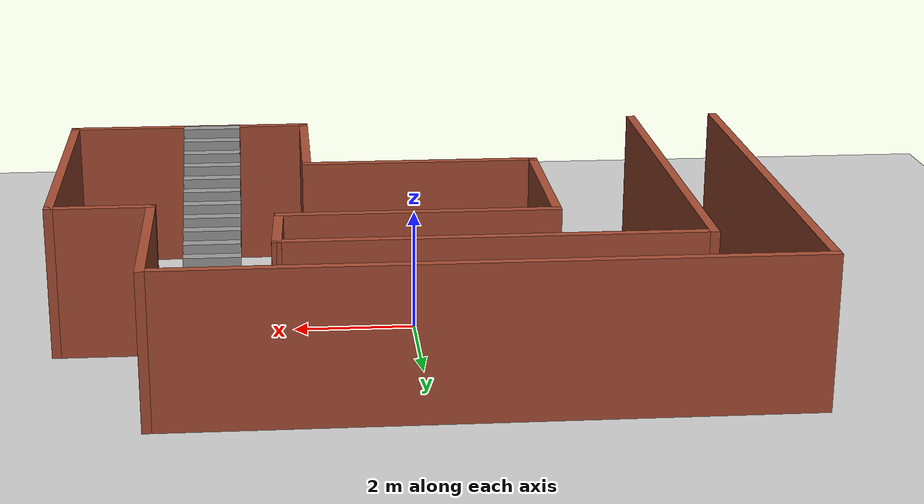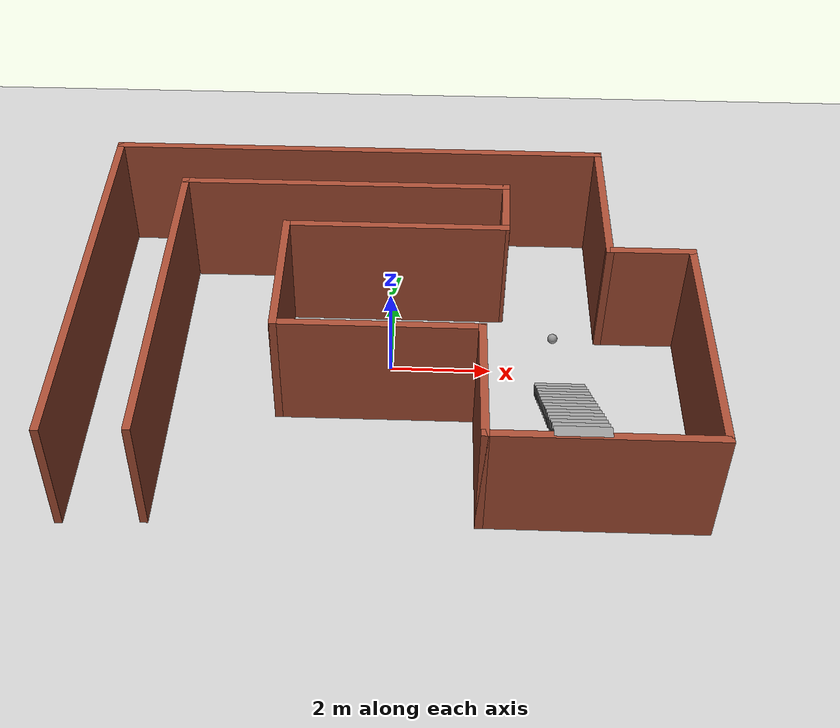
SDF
<sdf version="1.6">
 <world name="default">
  <light name="sun" type="directional">
   <pose>0 0 10 0 -0 0</pose>
   <diffuse>0.8 0.8 0.8 1</diffuse>
   <specular>0.2 0.2 0.2 1</specular>
   <attenuation>
    <range>1000</range>
    <constant>0.9</constant>
    <linear>0.01</linear>
    <quadratic>0.001</quadratic>
   </attenuation>
   <direction>-0.5 0.1 -0.9</direction>
  </light>
  <model name="ground_plane">
   <static>1</static>
   <link name="link">
    <collision name="collision">
     <geometry><plane><normal>0 0 1</normal><size>100 100</size></plane></geometry>
     <surface><friction><ode><mu>100</mu><mu2>50</mu2></ode></friction></surface>
    </collision>
    <visual name="visual">
     <cast_shadows>0</cast_shadows>
     <geometry><plane><normal>0 0 1</normal><size>100 100</size></plane></geometry>
     <material>
      <script><uri>file://media/materials/scripts/gazebo.material</uri><name>Gazebo/Grey</name></script>
     </material>
    </visual>
   </link>
  </model>
  <gravity>0 0 -9.8</gravity>
  <magnetic_field>6e-06 2.3e-05 -4.2e-05</magnetic_field>
  <atmosphere type="adiabatic"/>
  <physics name="default_physics" default="0" type="ode">
   <max_step_size>0.001</max_step_size>
   <real_time_factor>1</real_time_factor>
   <real_time_update_rate>1000</real_time_update_rate>
  </physics>
  <scene><ambient>0.4 0.4 0.4 1</ambient><background>0.7 0.7 0.7 1</background><shadows>1</shadows></scene>
  <spherical_coordinates>
   <surface_model>EARTH_WGS84</surface_model>
   <latitude_deg>0</latitude_deg>
   <longitude_deg>0</longitude_deg>
   <elevation>0</elevation>
   <heading_deg>0</heading_deg>
  </spherical_coordinates>
  <model name="Enviroment_1">
   <pose>-0.031534 -0.011993 0 0 -0 0</pose>
   <link name="Stairs_1">
    <visual name="Stairs_1_Visual_0">
     <pose>3.40348 -0.547566 0.083333 0 -0 0</pose>
     <geometry><box><size>1 0.233333 0.166667</size></box></geometry>
     <material>
      <script><uri>file://media/materials/scripts/gazebo.material</uri><name>Gazebo/Grey</name></script>
      <ambient>1 1 1 1</ambient>
     </material>
     <meta><layer>0</layer></meta>
    </visual>
    <collision name="Stairs_1_Collision_0">
     <geometry><box><size>1 0.233333 0.166667</size></box></geometry>
     <pose>3.40348 -0.547566 0.083333 0 -0 0</pose>
    </collision>
    <visual name="Stairs_1_Visual_1">
     <pose>3.40348 -0.7809 0.25 0 -0 0</pose>
     <geometry><box><size>1 0.233333 0.166667</size></box></geometry>
     <material>
      <script><uri>file://media/materials/scripts/gazebo.material</uri><name>Gazebo/Grey</name></script>
      <ambient>1 1 1 1</ambient>
     </material>
     <meta><layer>0</layer></meta>
    </visual>
    <collision name="Stairs_1_Collision_1">
     <geometry><box><size>1 0.233333 0.166667</size></box></geometry>
     <pose>3.40348 -0.7809 0.25 0 -0 0</pose>
    </collision>
    <visual name="Stairs_1_Visual_2">
     <pose>3.40348 -1.01423 0.416667 0 -0 0</pose>
     <geometry><box><size>1 0.233333 0.166667</size></box></geometry>
     <material>
      <script><uri>file://media/materials/scripts/gazebo.material</uri><name>Gazebo/Grey</name></script>
      <ambient>1 1 1 1</ambient>
     </material>
     <meta><layer>0</layer></meta>
    </visual>
    <collision name="Stairs_1_Collision_2">
     <geometry><box><size>1 0.233333 0.166667</size></box></geometry>
     <pose>3.40348 -1.01423 0.416667 0 -0 0</pose>
    </collision>
    <visual name="Stairs_1_Visual_3">
     <pose>3.40348 -1.24757 0.583333 0 -0 0</pose>
     <geometry><box><size>1 0.233333 0.166667</size></box></geometry>
     <material>
      <script><uri>file://media/materials/scripts/gazebo.material</uri><name>Gazebo/Grey</name></script>
      <ambient>1 1 1 1</ambient>
     </material>
     <meta><layer>0</layer></meta>
    </visual>
    <collision name="Stairs_1_Collision_3">
     <geometry><box><size>1 0.233333 0.166667</size></box></geometry>
     <pose>3.40348 -1.24757 0.583333 0 -0 0</pose>
    </collision>
    <visual name="Stairs_1_Visual_4">
     <pose>3.40348 -1.4809 0.75 0 -0 0</pose>
     <geometry><box><size>1 0.233333 0.166667</size></box></geometry>
     <material>
      <script><uri>file://media/materials/scripts/gazebo.material</uri><name>Gazebo/Grey</name></script>
      <ambient>1 1 1 1</ambient>
     </material>
     <meta><layer>0</layer></meta>
    </visual>
    <collision name="Stairs_1_Collision_4">
     <geometry><box><size>1 0.233333 0.166667</size></box></geometry>
     <pose>3.40348 -1.4809 0.75 0 -0 0</pose>
    </collision>
    <visual name="Stairs_1_Visual_5">
     <pose>3.40348 -1.71423 0.916667 0 -0 0</pose>
     <geometry><box><size>1 0.233333 0.166667</size></box></geometry>
     <material>
      <script><uri>file://media/materials/scripts/gazebo.material</uri><name>Gazebo/Grey</name></script>
      <ambient>1 1 1 1</ambient>
     </material>
     <meta><layer>0</layer></meta>
    </visual>
    <collision name="Stairs_1_Collision_5">
     <geometry><box><size>1 0.233333 0.166667</size></box></geometry>
     <pose>3.40348 -1.71423 0.916667 0 -0 0</pose>
    </collision>
    <visual name="Stairs_1_Visual_6">
     <pose>3.40348 -1.94757 1.08333 0 -0 0</pose>
     <geometry><box><size>1 0.233333 0.166667</size></box></geometry>
     <material>
      <script><uri>file://media/materials/scripts/gazebo.material</uri><name>Gazebo/Grey</name></script>
      <ambient>1 1 1 1</ambient>
     </material>
     <meta><layer>0</layer></meta>
    </visual>
    <collision name="Stairs_1_Collision_6">
     <geometry><box><size>1 0.233333 0.166667</size></box></geometry>
     <pose>3.40348 -1.94757 1.08333 0 -0 0</pose>
    </collision>
    <visual name="Stairs_1_Visual_7">
     <pose>3.40348 -2.1809 1.25 0 -0 0</pose>
     <geometry><box><size>1 0.233333 0.166667</size></box></geometry>
     <material>
      <script><uri>file://media/materials/scripts/gazebo.material</uri><name>Gazebo/Grey</name></script>
      <ambient>1 1 1 1</ambient>
     </material>
     <meta><layer>0</layer></meta>
    </visual>
    <collision name="Stairs_1_Collision_7">
     <geometry><box><size>1 0.233333 0.166667</size></box></geometry>
     <pose>3.40348 -2.1809 1.25 0 -0 0</pose>
    </collision>
    <visual name="Stairs_1_Visual_8">
     <pose>3.40348 -2.41423 1.41667 0 -0 0</pose>
     <geometry><box><size>1 0.233333 0.166667</size></box></geometry>
     <material>
      <script><uri>file://media/materials/scripts/gazebo.material</uri><name>Gazebo/Grey</name></script>
      <ambient>1 1 1 1</ambient>
     </material>
     <meta><layer>0</layer></meta>
    </visual>
    <collision name="Stairs_1_Collision_8">
     <geometry><box><size>1 0.233333 0.166667</size></box></geometry>
     <pose>3.40348 -2.41423 1.41667 0 -0 0</pose>
    </collision>
    <visual name="Stairs_1_Visual_9">
     <pose>3.40348 -2.64757 1.58333 0 -0 0</pose>
     <geometry><box><size>1 0.233333 0.166667</size></box></geometry>
     <material>
      <script><uri>file://media/materials/scripts/gazebo.material</uri><name>Gazebo/Grey</name></script>
      <ambient>1 1 1 1</ambient>
     </material>
     <meta><layer>0</layer></meta>
    </visual>
    <collision name="Stairs_1_Collision_9">
     <geometry><box><size>1 0.233333 0.166667</size></box></geometry>
     <pose>3.40348 -2.64757 1.58333 0 -0 0</pose>
    </collision>
    <visual name="Stairs_1_Visual_10">
     <pose>3.40348 -2.8809 1.75 0 -0 0</pose>
     <geometry><box><size>1 0.233333 0.166667</size></box></geometry>
     <material>
      <script><uri>file://media/materials/scripts/gazebo.material</uri><name>Gazebo/Grey</name></script>
      <ambient>1 1 1 1</ambient>
     </material>
     <meta><layer>0</layer></meta>
    </visual>
    <collision name="Stairs_1_Collision_10">
     <geometry><box><size>1 0.233333 0.166667</size></box></geometry>
     <pose>3.40348 -2.8809 1.75 0 -0 0</pose>
    </collision>
    <visual name="Stairs_1_Visual_11">
     <pose>3.40348 -3.11423 1.91667 0 -0 0</pose>
     <geometry><box><size>1 0.233333 0.166667</size></box></geometry>
     <material>
      <script><uri>file://media/materials/scripts/gazebo.material</uri><name>Gazebo/Grey</name></script>
      <ambient>1 1 1 1</ambient>
     </material>
     <meta><layer>0</layer></meta>
    </visual>
    <collision name="Stairs_1_Collision_11">
     <geometry><box><size>1 0.233333 0.166667</size></box></geometry>
     <pose>3.40348 -3.11423 1.91667 0 -0 0</pose>
    </collision>
    <visual name="Stairs_1_Visual_12">
     <pose>3.40348 -3.34757 2.08333 0 -0 0</pose>
     <geometry><box><size>1 0.233333 0.166667</size></box></geometry>
     <material>
      <script><uri>file://media/materials/scripts/gazebo.material</uri><name>Gazebo/Grey</name></script>
      <ambient>1 1 1 1</ambient>
     </material>
     <meta><layer>0</layer></meta>
    </visual>
    <collision name="Stairs_1_Collision_12">
     <geometry><box><size>1 0.233333 0.166667</size></box></geometry>
     <pose>3.40348 -3.34757 2.08333 0 -0 0</pose>
    </collision>
    <visual name="Stairs_1_Visual_13">
     <pose>3.40348 -3.5809 2.25 0 -0 0</pose>
     <geometry><box><size>1 0.233333 0.166667</size></box></geometry>
     <material>
      <script><uri>file://media/materials/scripts/gazebo.material</uri><name>Gazebo/Grey</name></script>
      <ambient>1 1 1 1</ambient>
     </material>
     <meta><layer>0</layer></meta>
    </visual>
    <collision name="Stairs_1_Collision_13">
     <geometry><box><size>1 0.233333 0.166667</size></box></geometry>
     <pose>3.40348 -3.5809 2.25 0 -0 0</pose>
    </collision>
    <visual name="Stairs_1_Visual_14">
     <pose>3.40348 -3.81423 2.41667 0 -0 0</pose>
     <geometry><box><size>1 0.233333 0.166667</size></box></geometry>
     <material>
      <script><uri>file://media/materials/scripts/gazebo.material</uri><name>Gazebo/Grey</name></script>
      <ambient>1 1 1 1</ambient>
     </material>
     <meta><layer>0</layer></meta>
    </visual>
    <collision name="Stairs_1_Collision_14">
     <geometry><box><size>1 0.233333 0.166667</size></box></geometry>
     <pose>3.40348 -3.81423 2.41667 0 -0 0</pose>
    </collision>
   </link>
   <link name="Wall_0">
    <collision name="Wall_0_Collision">
     <geometry><box><size>3 0.15 2.5</size></box></geometry>
     <pose>0 0 1.25 0 -0 0</pose>
    </collision>
    <visual name="Wall_0_Visual">
     <pose>0 0 1.25 0 -0 0</pose>
     <geometry><box><size>3 0.15 2.5</size></box></geometry>
     <material>
      <script><uri>file://media/materials/scripts/gazebo.material</uri><name>Gazebo/Bricks</name></script>
      <ambient>1 1 1 1</ambient>
     </material>
     <meta><layer>0</layer></meta>
    </visual>
    <pose>-2.1 0.125 0 0 0 -1.5708</pose>
   </link>
   <link name="Wall_11">
    <collision name="Wall_11_Collision">
     <geometry><box><size>7 0.15 2.5</size></box></geometry>
     <pose>0 0 1.25 0 -0 0</pose>
    </collision>
    <visual name="Wall_11_Visual">
     <pose>0 0 1.25 0 -0 0</pose>
     <geometry><box><size>7 0.15 2.5</size></box></geometry>
     <material>
      <script><uri>file://media/materials/scripts/gazebo.material</uri><name>Gazebo/Bricks</name></script>
      <ambient>1 1 1 1</ambient>
     </material>
     <meta><layer>0</layer></meta>
    </visual>
    <pose>-4.30375 -0.559191 0 0 -0 1.5708</pose>
   </link>
   <link name="Wall_19">
    <collision name="Wall_19_Collision">
     <geometry><box><size>6.75 0.15 2.5</size></box></geometry>
     <pose>0 0 1.25 0 -0 0</pose>
    </collision>
    <visual name="Wall_19_Visual">
     <pose>0 0 1.25 0 -0 0</pose>
     <geometry><box><size>6.75 0.15 2.5</size></box></geometry>
     <material>
      <script><uri>file://media/materials/scripts/gazebo.material</uri><name>Gazebo/Bricks</name></script>
      <ambient>1 1 1 1</ambient>
     </material>
     <meta><layer>0</layer></meta>
    </visual>
    <pose>-1.00375 2.86581 0 0 -0 0</pose>
   </link>
   <link name="Wall_2">
    <collision name="Wall_2_Collision">
     <geometry><box><size>4 0.15 2.5</size></box></geometry>
     <pose>0 0 1.25 0 -0 0</pose>
    </collision>
    <visual name="Wall_2_Visual">
     <pose>0 0 1.25 0 -0 0</pose>
     <geometry><box><size>4 0.15 2.5</size></box></geometry>
     <material>
      <script><uri>file://media/materials/scripts/gazebo.material</uri><name>Gazebo/Bricks</name></script>
      <ambient>1 1 1 1</ambient>
     </material>
     <meta><layer>0</layer></meta>
    </visual>
    <pose>-0.175 -1.3 0 0 -0 0</pose>
   </link>
   <link name="Wall_21">
    <collision name="Wall_21_Collision">
     <geometry><box><size>4.5 0.15 2.5</size></box></geometry>
     <pose>0 0 1.25 0 -0 0</pose>
    </collision>
    <visual name="Wall_21_Visual">
     <pose>0 0 1.25 0 -0 0</pose>
     <geometry><box><size>4.5 0.15 2.5</size></box></geometry>
     <material>
      <script><uri>file://media/materials/scripts/gazebo.material</uri><name>Gazebo/Bricks</name></script>
      <ambient>1 1 1 1</ambient>
     </material>
     <meta><layer>0</layer></meta>
    </visual>
    <pose>0.075 1.55 0 0 -0 0</pose>
   </link>
   <link name="Wall_22">
    <collision name="Wall_22_Collision">
     <geometry><box><size>1.46662 0.15 2.5</size></box></geometry>
     <pose>0 0 1.25 0 -0 0</pose>
    </collision>
    <visual name="Wall_22_Visual">
     <pose>0 0 1.25 0 -0 0</pose>
     <geometry><box><size>1.46662 0.15 2.5</size></box></geometry>
     <material>
      <script><uri>file://media/materials/scripts/gazebo.material</uri><name>Gazebo/Bricks</name></script>
      <ambient>1 1 1 1</ambient>
     </material>
     <meta><layer>0</layer></meta>
    </visual>
    <pose>2.27313 2.2079 0 0 -0 1.53566</pose>
   </link>
   <link name="Wall_3">
    <collision name="Wall_3_Collision">
     <geometry><box><size>2.75 0.15 2.5</size></box></geometry>
     <pose>0 0 1.25 0 -0 0</pose>
    </collision>
    <visual name="Wall_3_Visual">
     <pose>0 0 1.25 0 -0 0</pose>
     <geometry><box><size>2.75 0.15 2.5</size></box></geometry>
     <material>
      <script><uri>file://media/materials/scripts/gazebo.material</uri><name>Gazebo/Bricks</name></script>
      <ambient>1 1 1 1</ambient>
     </material>
     <meta><layer>0</layer></meta>
    </visual>
    <pose>1.75 -2.6 0 0 0 -1.5708</pose>
   </link>
   <link name="Wall_4">
    <collision name="Wall_4_Collision">
     <geometry><box><size>4.25 0.15 2.5</size></box></geometry>
     <pose>0 0 1.25 0 -0 0</pose>
    </collision>
    <visual name="Wall_4_Visual">
     <pose>0 0 1.25 0 -0 0</pose>
     <geometry><box><size>4.25 0.15 2.5</size></box></geometry>
     <material>
      <script><uri>file://media/materials/scripts/gazebo.material</uri><name>Gazebo/Bricks</name></script>
      <ambient>1 1 1 1</ambient>
     </material>
     <meta><layer>0</layer></meta>
    </visual>
    <pose>3.8 -3.9 0 0 -0 0</pose>
   </link>
   <link name="Wall_5">
    <collision name="Wall_5_Collision">
     <geometry><box><size>5 0.15 2.5</size></box></geometry>
     <pose>0 0 1.25 0 -0 0</pose>
    </collision>
    <visual name="Wall_5_Visual">
     <pose>0 0 1.25 0 -0 0</pose>
     <geometry><box><size>5 0.15 2.5</size></box></geometry>
     <material>
      <script><uri>file://media/materials/scripts/gazebo.material</uri><name>Gazebo/Bricks</name></script>
      <ambient>1 1 1 1</ambient>
     </material>
     <meta><layer>0</layer></meta>
    </visual>
    <pose>5.85 -1.475 0 0 -0 1.5708</pose>
   </link>
   <link name="Wall_6">
    <collision name="Wall_6_Collision">
     <geometry><box><size>1.75 0.15 2.5</size></box></geometry>
     <pose>0 0 1.25 0 -0 0</pose>
    </collision>
    <visual name="Wall_6_Visual">
     <pose>0 0 1.25 0 -0 0</pose>
     <geometry><box><size>1.75 0.15 2.5</size></box></geometry>
     <material>
      <script><uri>file://media/materials/scripts/gazebo.material</uri><name>Gazebo/Bricks</name></script>
      <ambient>1 1 1 1</ambient>
     </material>
     <meta><layer>0</layer></meta>
    </visual>
    <pose>5.05 0.95 0 0 -0 3.14159</pose>
   </link>
   <link name="Wall_7">
    <collision name="Wall_7_Collision">
     <geometry><box><size>3.25 0.15 2.5</size></box></geometry>
     <pose>0 0 1.25 0 -0 0</pose>
    </collision>
    <visual name="Wall_7_Visual">
     <pose>0 0 1.25 0 -0 0</pose>
     <geometry><box><size>3.25 0.15 2.5</size></box></geometry>
     <material>
      <script><uri>file://media/materials/scripts/gazebo.material</uri><name>Gazebo/Bricks</name></script>
      <ambient>1 1 1 1</ambient>
     </material>
     <meta><layer>0</layer></meta>
    </visual>
    <pose>4.25 2.5 0 0 -0 1.5708</pose>
   </link>
   <link name="Wall_8">
    <collision name="Wall_8_Collision">
     <geometry><box><size>10.25 0.15 2.5</size></box></geometry>
     <pose>0 0 1.25 0 -0 0</pose>
    </collision>
    <visual name="Wall_8_Visual">
     <pose>0 0 1.25 0 -0 0</pose>
     <geometry><box><size>10.25 0.15 2.5</size></box></geometry>
     <material>
      <script><uri>file://media/materials/scripts/gazebo.material</uri><name>Gazebo/Bricks</name></script>
      <ambient>1 1 1 1</ambient>
     </material>
     <meta><layer>0</layer></meta>
    </visual>
    <pose>-0.8 4.05 0 0 -0 3.14159</pose>
   </link>
   <link name="Wall_9">
    <collision name="Wall_9_Collision">
     <geometry><box><size>8.25 0.15 2.5</size></box></geometry>
     <pose>0 0 1.25 0 -0 0</pose>
    </collision>
    <visual name="Wall_9_Visual">
     <pose>0 0 1.25 0 -0 0</pose>
     <geometry><box><size>8.25 0.15 2.5</size></box></geometry>
     <material>
      <script><uri>file://media/materials/scripts/gazebo.material</uri><name>Gazebo/Bricks</name></script>
      <ambient>1 1 1 1</ambient>
     </material>
     <meta><layer>0</layer></meta>
    </visual>
    <pose>-5.85 0 0 0 0 -1.5708</pose>
   </link>
   <static>1</static>
  </model>
  <model name="ball_1">
   <link name="link_0">
    <inertial>
     <mass>1</mass>
     <inertia><ixx>0.1</ixx><ixy>0</ixy><ixz>0</ixz><iyy>0.1</iyy><iyz>0</iyz><izz>0.1</izz></inertia>
    </inertial>
    <visual name="visual">
     <geometry><sphere><radius>0.1</radius></sphere></geometry>
     <material>
      <lighting>1</lighting>
      <script><uri>file://media/materials/scripts/gazebo.material</uri><name>Gazebo/Grey</name></script>
      <ambient>1 1 1 1</ambient>
      <diffuse>1 1 1 1</diffuse>
      <specular>1 1 1 1</specular>
      <emissive>1 1 1 1</emissive>
      <shader type="vertex"><normal_map>__default__</normal_map></shader>
     </material>
    </visual>
    <collision name="collision">
     <geometry><sphere><radius>0.1</radius></sphere></geometry>
     <surface>
      <friction>
       <ode><mu>1</mu><mu2>1</mu2><fdir1>0 0 0</fdir1><slip1>0</slip1><slip2>0</slip2></ode>
       <torsional>
        <coefficient>1</coefficient>
        <patch_radius>0</patch_radius>
        <surface_radius>0</surface_radius>
        <use_patch_radius>1</use_patch_radius>
        <ode><slip>0</slip></ode>
       </torsional>
      </friction>
      <bounce><restitution_coefficient>0</restitution_coefficient><threshold>1e+06</threshold></bounce>
      <contact>
       <collide_without_contact>0</collide_without_contact>
       <collide_without_contact_bitmask>1</collide_without_contact_bitmask>
       <collide_bitmask>1</collide_bitmask>
       <ode>
        <soft_cfm>0</soft_cfm>
        <soft_erp>0.2</soft_erp>
        <kp>1e+13</kp>
        <kd>1</kd>
        <max_vel>0.01</max_vel>
        <min_depth>0</min_depth>
       </ode>
       <bullet>
        <split_impulse>1</split_impulse>
        <split_impulse_penetration_threshold>-0.01</split_impulse_penetration_threshold>
        <soft_cfm>0</soft_cfm>
        <soft_erp>0.2</soft_erp>
        <kp>1e+13</kp>
        <kd>1</kd>
       </bullet>
      </contact>
     </surface>
    </collision>
   </link>
   <static>0</static>
   <pose>3.30365 0.897623 0.1 0 -0 0</pose>
  </model>
  <model name="beer">
   <link name="link">
    <pose>0 0 0.115 0 -0 0</pose>
    <inertial>
     <mass>0.39</mass>
     <inertia><ixx>0.00058</ixx><ixy>0</ixy><ixz>0</ixz><iyy>0.00058</iyy><iyz>0</iyz><izz>0.00019</izz></inertia>
    </inertial>
    <collision name="collision">
     <geometry><cylinder><radius>0.055</radius><length>0.23</length></cylinder></geometry>
    </collision>
    <visual name="visual">
     <geometry><cylinder><radius>0.055</radius><length>0.23</length></cylinder></geometry>
     <material>
      <script>
       <uri>model://beer/materials/scripts</uri>
       <uri>model://beer/materials/textures</uri>
       <name>Beer/Diffuse</name>
      </script>
     </material>
    </visual>
   </link>
   <pose>-1.25822 0.749085 -9e-06 0 0 -8e-06</pose>
  </model>
 </world>
</sdf>
